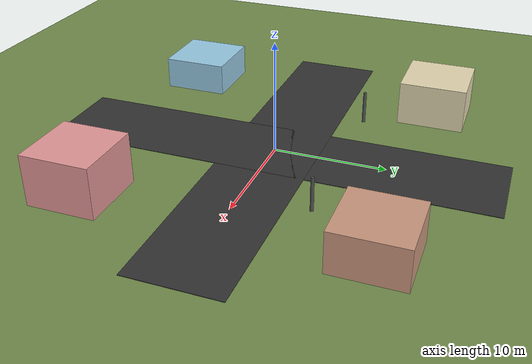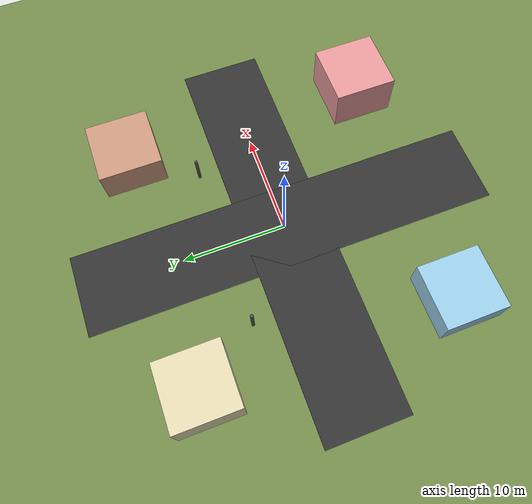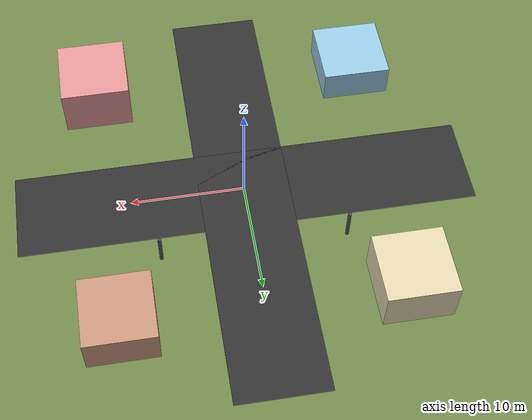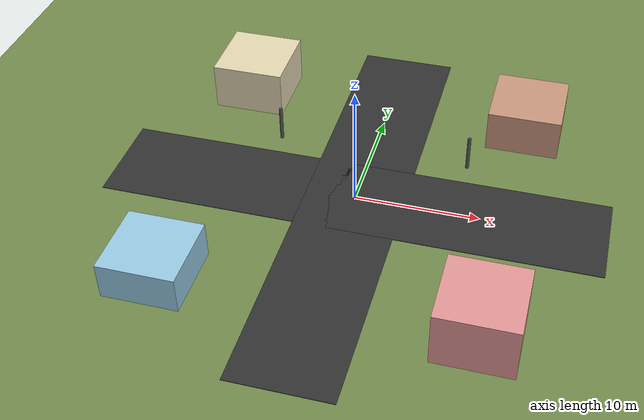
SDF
<?xml version="1.0" encoding="UTF-8"?>
<sdf version="1.9">
  <world name="town">
    <physics type="ode">
      <max_step_size>0.004</max_step_size>
      <real_time_factor>1.0</real_time_factor>
      <real_time_update_rate>250</real_time_update_rate>
    </physics>
    <gravity>0 0 -9.8</gravity>
    <magnetic_field>1.32e-06 2.16e-05 -4.34e-05</magnetic_field>
    <atmosphere type="adiabatic"/>
    <scene>
      <grid>false</grid>
      <ambient>0.4 0.4 0.4 1</ambient>
      <background>0.7 0.7 0.7 1</background>
      <shadows>false</shadows>
    </scene>

    <!-- Big grass ground plane underneath everything. -->
    <model name="ground_plane">
      <static>true</static>
      <link name="link">
        <collision name="collision">
          <geometry><plane><normal>0 0 1</normal><size>200 200</size></plane></geometry>
          <surface><friction><ode/></friction><bounce/><contact/></surface>
        </collision>
        <visual name="visual">
          <geometry><plane><normal>0 0 1</normal><size>200 200</size></plane></geometry>
          <material>
            <ambient>0.45 0.55 0.30 1</ambient>
            <diffuse>0.45 0.55 0.30 1</diffuse>
          </material>
        </visual>
        <pose>0 0 0 0 -0 0</pose>
        <inertial><pose>0 0 0 0 -0 0</pose><mass>1</mass>
          <inertia><ixx>1</ixx><ixy>0</ixy><ixz>0</ixz><iyy>1</iyy><iyz>0</iyz><izz>1</izz></inertia>
        </inertial>
        <enable_wind>false</enable_wind>
      </link>
      <pose>0 0 0 0 -0 0</pose>
      <self_collide>false</self_collide>
    </model>

    <!-- Cross-shaped asphalt roads. -->
    <model name="road_ew"><static>true</static><link name="link">
      <collision name="c"><geometry><box><size>40 8 0.05</size></box></geometry></collision>
      <visual name="v"><geometry><box><size>40 8 0.05</size></box></geometry>
        <material><ambient>0.2 0.2 0.2 1</ambient><diffuse>0.2 0.2 0.2 1</diffuse></material></visual>
      <pose>0 0 0.025 0 0 0</pose></link></model>
    <model name="road_ns"><static>true</static><link name="link">
      <collision name="c"><geometry><box><size>8 40 0.05</size></box></geometry></collision>
      <visual name="v"><geometry><box><size>8 40 0.05</size></box></geometry>
        <material><ambient>0.2 0.2 0.2 1</ambient><diffuse>0.2 0.2 0.2 1</diffuse></material></visual>
      <pose>0 0 0.025 0 0 0</pose></link></model>

    <!-- Four buildings, one per quadrant.  Distinct colours so it's easy to
         tell at a glance which way the drone is facing. -->
    <model name="house_nw"><static>true</static><pose>-12 12 2 0 0 0</pose><link name="link">
      <collision name="c"><geometry><box><size>6 6 4</size></box></geometry></collision>
      <visual name="v"><geometry><box><size>6 6 4</size></box></geometry>
        <material><ambient>0.9 0.85 0.7 1</ambient><diffuse>0.9 0.85 0.7 1</diffuse></material></visual>
    </link></model>
    <model name="house_ne"><static>true</static><pose>12 12 1.75 0 0 0</pose><link name="link">
      <collision name="c"><geometry><box><size>6 6 3.5</size></box></geometry></collision>
      <visual name="v"><geometry><box><size>6 6 3.5</size></box></geometry>
        <material><ambient>0.8 0.6 0.5 1</ambient><diffuse>0.8 0.6 0.5 1</diffuse></material></visual>
    </link></model>
    <model name="house_sw"><static>true</static><pose>-12 -12 1.5 0 0 0</pose><link name="link">
      <collision name="c"><geometry><box><size>6 6 3</size></box></geometry></collision>
      <visual name="v"><geometry><box><size>6 6 3</size></box></geometry>
        <material><ambient>0.6 0.8 0.9 1</ambient><diffuse>0.6 0.8 0.9 1</diffuse></material></visual>
    </link></model>
    <model name="house_se"><static>true</static><pose>12 -12 2.25 0 0 0</pose><link name="link">
      <collision name="c"><geometry><box><size>6 6 4.5</size></box></geometry></collision>
      <visual name="v"><geometry><box><size>6 6 4.5</size></box></geometry>
        <material><ambient>0.9 0.6 0.6 1</ambient><diffuse>0.9 0.6 0.6 1</diffuse></material></visual>
    </link></model>

    <!-- A couple of lampposts to give the ground-rover lidar something
         tall and skinny to detect. -->
    <model name="lamp_e"><static>true</static><pose>8 6 1.5 0 0 0</pose><link name="link">
      <collision name="c"><geometry><cylinder><radius>0.15</radius><length>3</length></cylinder></geometry></collision>
      <visual name="v"><geometry><cylinder><radius>0.15</radius><length>3</length></cylinder></geometry>
        <material><ambient>0.3 0.3 0.3 1</ambient><diffuse>0.3 0.3 0.3 1</diffuse></material></visual>
    </link></model>
    <model name="lamp_w"><static>true</static><pose>-8 6 1.5 0 0 0</pose><link name="link">
      <collision name="c"><geometry><cylinder><radius>0.15</radius><length>3</length></cylinder></geometry></collision>
      <visual name="v"><geometry><cylinder><radius>0.15</radius><length>3</length></cylinder></geometry>
        <material><ambient>0.3 0.3 0.3 1</ambient><diffuse>0.3 0.3 0.3 1</diffuse></material></visual>
    </link></model>

    <light name="sunUTC" type="directional">
      <pose>0 0 500 0 -0 0</pose>
      <cast_shadows>true</cast_shadows>
      <intensity>1</intensity>
      <direction>0.001 0.625 -0.78</direction>
      <diffuse>0.904 0.904 0.904 1</diffuse>
      <specular>0.271 0.271 0.271 1</specular>
      <attenuation><range>2000</range><linear>0</linear><constant>1</constant><quadratic>0</quadratic></attenuation>
      <spot><inner_angle>0</inner_angle><outer_angle>0</outer_angle><falloff>0</falloff></spot>
    </light>

    <spherical_coordinates>
      <surface_model>EARTH_WGS84</surface_model>
      <world_frame_orientation>ENU</world_frame_orientation>
      <latitude_deg>47.397971057728974</latitude_deg>
      <longitude_deg> 8.546163739800146</longitude_deg>
      <elevation>0</elevation>
    </spherical_coordinates>
  </world>
</sdf>
